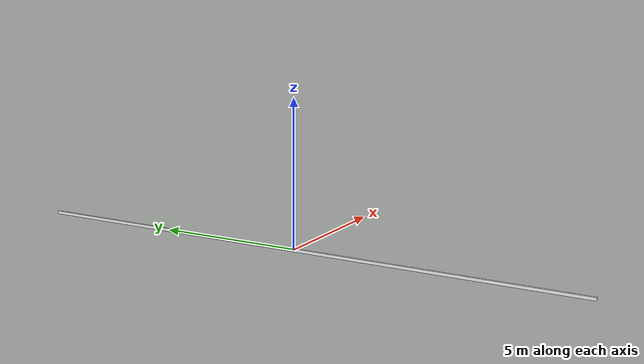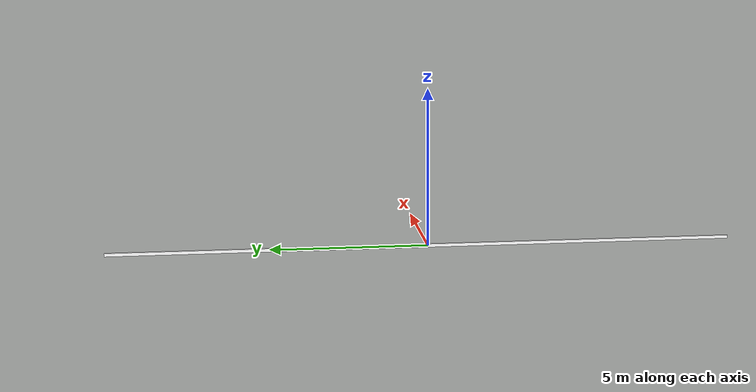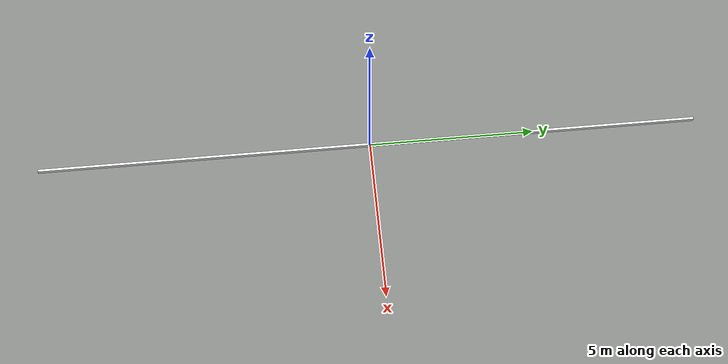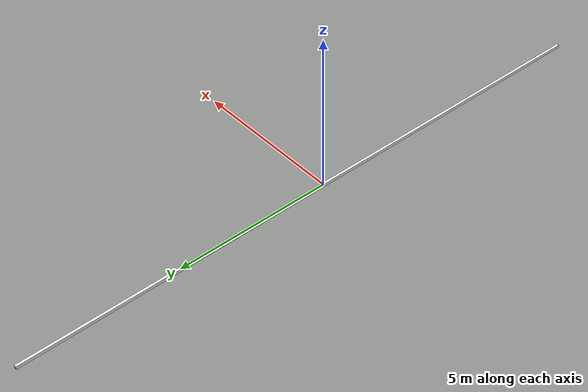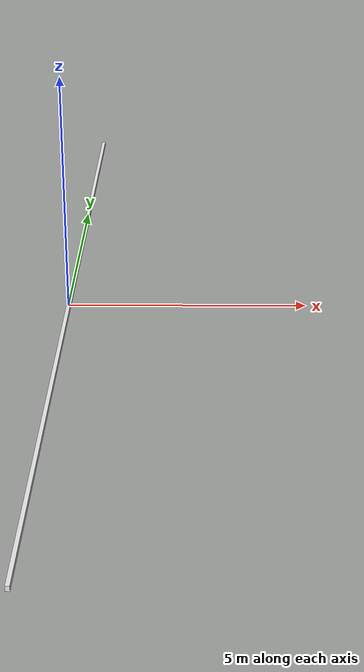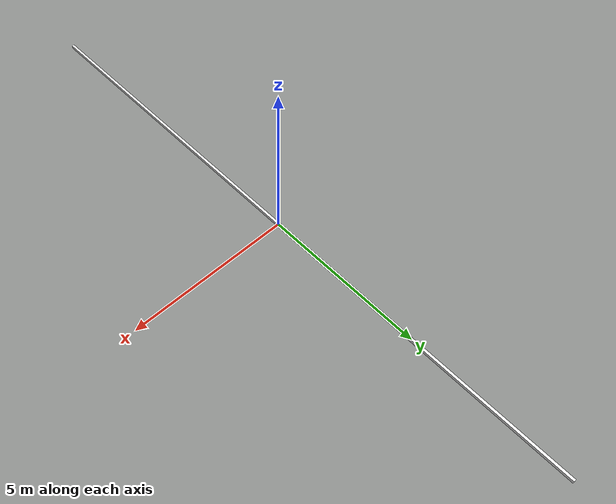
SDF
<?xml version="1.0" ?>
<sdf version="1.5">
  <model name="white_line">
    <static>true</static>
    <link name="link">
      <collision name="collision">
        <geometry>
          <box>
            <size>0.08 20 0.1</size>
          </box>
        </geometry>
      </collision>
      <visual name="visual">
        <cast_shadows>false</cast_shadows>
        <geometry>
          <box>
            <size>0.08 20 0.101</size>
          </box>
        </geometry>
        <material>
          <script>
            <uri>model://white_line/materials/scripts</uri>
            <uri>model://white_line/materials/textures</uri>
            <name>vrc/white</name>
          </script>
        </material>
      </visual>
    </link>
  </model>
</sdf>
